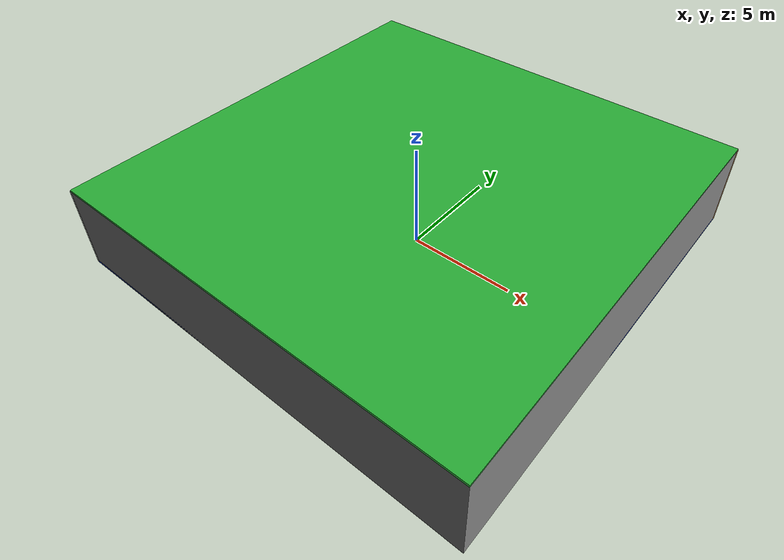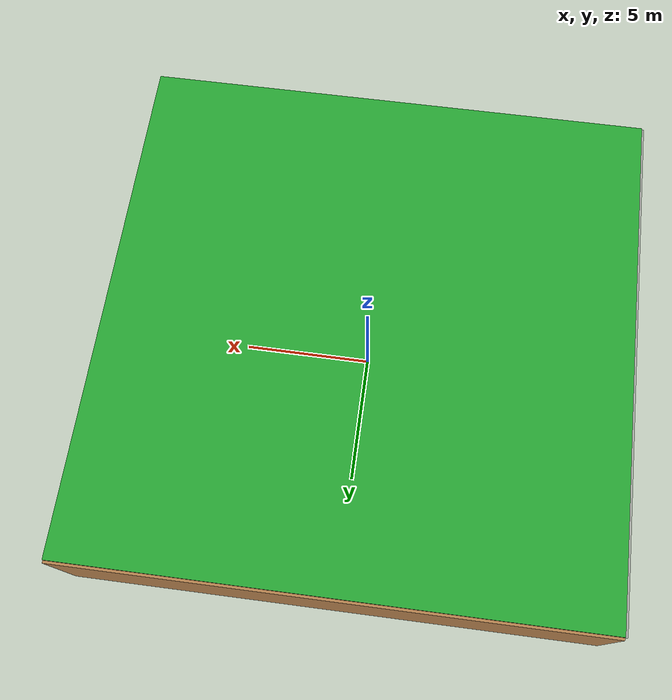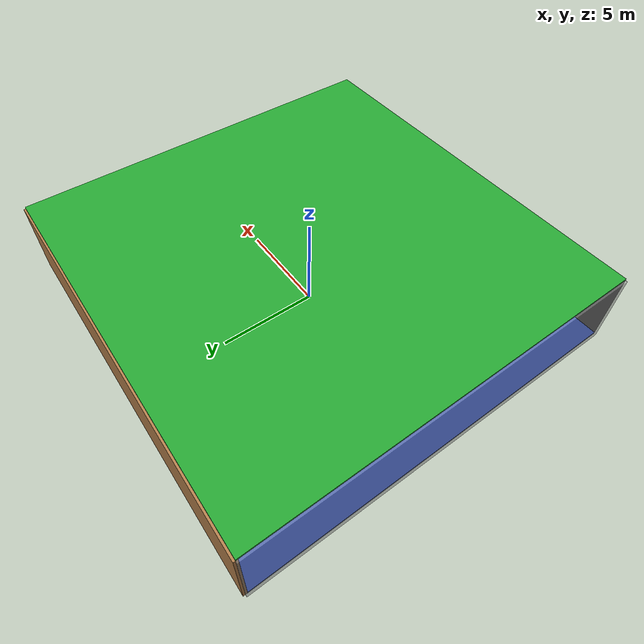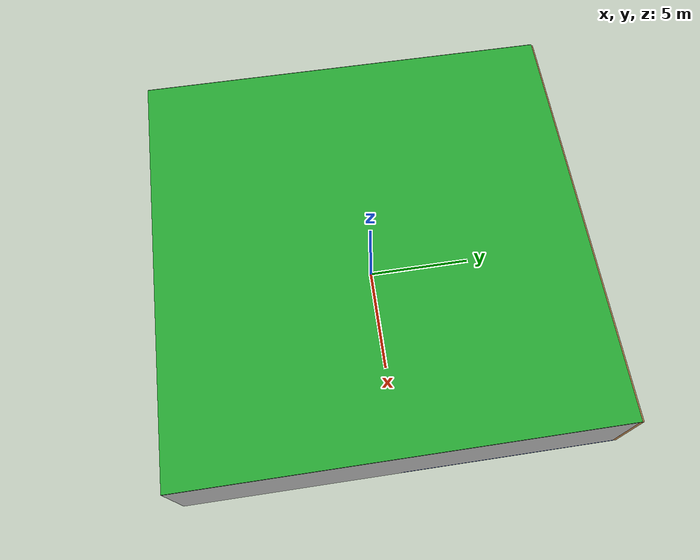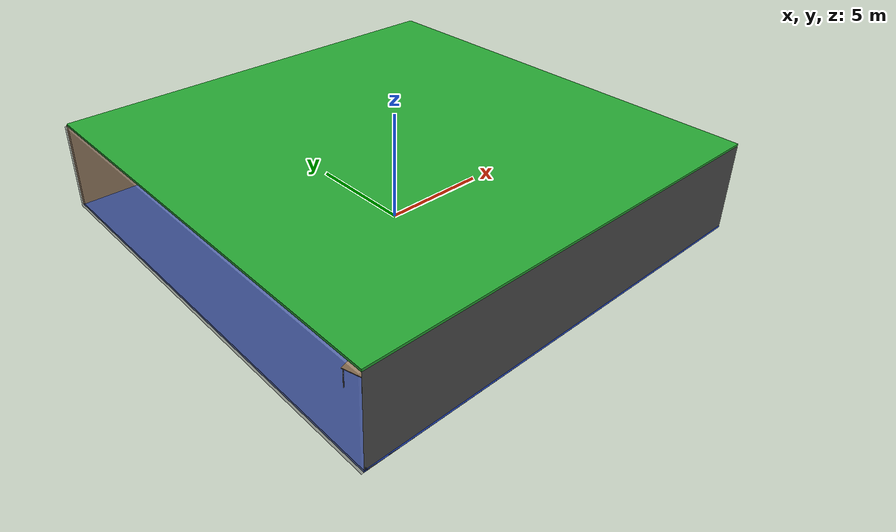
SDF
<sdf version="1.4">
 <world name="default">
  <physics type="ode">
   <max_step_size>0.001</max_step_size>
   <real_time_factor>1</real_time_factor>
   <real_time_update_rate>1000</real_time_update_rate>
   <gravity>0 0 -9.8</gravity>
  </physics>
  <scene><ambient>0.4 0.4 0.4 1</ambient><background>0.7 0.7 0.7 1</background><shadows>1</shadows></scene>
  <model name="Surrounding">
   <static>1</static>
   <link name="Ceiling">
    <collision name="Ceiling_Collision"><geometry><box><size>20 20 0.1</size></box></geometry></collision>
    <visual name="Ceiling_Visual">
     <geometry><box><size>20 20 0.1</size></box></geometry>
     <material>
      <script><uri>file://media/materials/scripts/gazebo.material</uri><name>Gazebo/Green</name></script>
     </material>
    </visual>
    <pose>0 0 4.05 0 0 0</pose>
   </link>
   <link name="Wall_South">
    <collision name="Wall_South_Collision">
     <geometry><box><size>20 0 4</size></box></geometry>
     <pose>0 0 2 0 -0 0</pose>
    </collision>
    <visual name="Wall_South_Visual">
     <pose>0 0 2 0 -0 0</pose>
     <geometry><box><size>20 0 4</size></box></geometry>
     <material>
      <script><uri>file://media/materials/scripts/gazebo.material</uri><name>Gazebo/DarkGrey</name></script>
     </material>
    </visual>
    <velocity_decay><linear>0</linear><angular>0</angular></velocity_decay>
    <pose>0 -10 0 0 -0 0</pose>
   </link>
   <link name="Wall_East">
    <collision name="Wall_21_Collision">
     <geometry><box><size>20 0 4</size></box></geometry>
     <pose>0 0 2 0 -0 0</pose>
    </collision>
    <visual name="Wall_21_Visual">
     <pose>0 0 2 0 -0 0</pose>
     <geometry><box><size>20 0 4</size></box></geometry>
     <material>
      <script><uri>file://media/materials/scripts/gazebo.material</uri><name>Gazebo/LightOn</name></script>
     </material>
    </visual>
    <velocity_decay><linear>0</linear><angular>0</angular></velocity_decay>
    <pose>10 0 0 0 -0 1.5708</pose>
   </link>
   <link name="Wall_North">
    <collision name="Wall_22_Collision">
     <geometry><box><size>20 0.2 4</size></box></geometry>
     <pose>0 0 2 0 -0 0</pose>
    </collision>
    <visual name="Wall_22_Visual">
     <pose>0 0 2 0 -0 0</pose>
     <geometry><box><size>20 0.2 4</size></box></geometry>
     <material>
      <script><uri>file://media/materials/scripts/gazebo.material</uri><name>Gazebo/WoodPallet</name></script>
     </material>
    </visual>
    <velocity_decay><linear>0</linear><angular>0</angular></velocity_decay>
    <pose>0 10 0 0 -0 0</pose>
   </link>
   <link name="Wall_West">
    <collision name="Wall_23_Collision">
     <geometry><box><size>20 0.2 4</size></box></geometry>
     <pose>0 0 2 0 -0 0</pose>
    </collision>
    <visual name="Wall_23_Visual">
     <pose>0 0 2 0 -0 0</pose>
     <geometry><box><size>20 0.2 4</size></box></geometry>
     <material>
      <script><uri>file://media/materials/scripts/gazebo.material</uri><name>Gazebo/GreyTransparent</name></script>
     </material>
    </visual>
    <velocity_decay><linear>0</linear><angular>0</angular></velocity_decay>
    <pose>-10 0 0 0 0 -1.5708</pose>
   </link>
   <link name="Ground_link">
    <collision name="collision">
     <pose>0 0 .05 0 -0 0</pose>
     <geometry><box><size>20 20 0.1</size></box></geometry>
    </collision>
    <visual name="visual">
     <pose>0 0 .05 0 -0 0</pose>
     <geometry><box><size>20 20 0.1</size></box></geometry>
     <material>
      <script><uri>file://media/materials/scripts/gazebo.material</uri><name>Gazebo/BlueLaser</name></script>
     </material>
    </visual>
   </link>
   <static>1</static>
  </model>
  <spherical_coordinates>
   <surface_model>EARTH_WGS84</surface_model>
   <latitude_deg>0</latitude_deg>
   <longitude_deg>0</longitude_deg>
   <elevation>0</elevation>
   <heading_deg>0</heading_deg>
  </spherical_coordinates>
  <light name="lightball_0" type="diffuse">
   <diffuse>0.8 0.8 0.8 1</diffuse>
   <specular>0.2 0.2 0.2 1</specular>
   <attenuation>
    <range>100</range>
    <constant>0.7</constant>
    <linear>0.01</linear>
    <quadratic>0.001</quadratic>
   </attenuation>
   <direction>-0.5 0.1 -0.9</direction>
   <pose>-0.970842423771 0.563446726791 0.785382545897 0 0 0</pose>
  </light>
  <light name="lightball_1" type="diffuse">
   <diffuse>0.8 0.8 0.8 1</diffuse>
   <specular>0.2 0.2 0.2 1</specular>
   <attenuation>
    <range>100</range>
    <constant>0.7</constant>
    <linear>0.01</linear>
    <quadratic>0.001</quadratic>
   </attenuation>
   <direction>-0.5 0.1 -0.9</direction>
   <pose>5.435956541 3.86478780326 0.607128049213 0 0 0</pose>
  </light>
  <light name="lightball_2" type="diffuse">
   <diffuse>0.8 0.8 0.8 1</diffuse>
   <specular>0.2 0.2 0.2 1</specular>
   <attenuation>
    <range>100</range>
    <constant>0.7</constant>
    <linear>0.01</linear>
    <quadratic>0.001</quadratic>
   </attenuation>
   <direction>-0.5 0.1 -0.9</direction>
   <pose>-0.109310338513 -7.3426509487 1.81414455217 0 0 0</pose>
  </light>
  <light name="lightball_3" type="diffuse">
   <diffuse>0.8 0.8 0.8 1</diffuse>
   <specular>0.2 0.2 0.2 1</specular>
   <attenuation>
    <range>100</range>
    <constant>0.7</constant>
    <linear>0.01</linear>
    <quadratic>0.001</quadratic>
   </attenuation>
   <direction>-0.5 0.1 -0.9</direction>
   <pose>1.43909907251 -9.99012707582 3.8110300695 0 0 0</pose>
  </light>
  <light name="lightball_4" type="diffuse">
   <diffuse>0.8 0.8 0.8 1</diffuse>
   <specular>0.2 0.2 0.2 1</specular>
   <attenuation>
    <range>100</range>
    <constant>0.7</constant>
    <linear>0.01</linear>
    <quadratic>0.001</quadratic>
   </attenuation>
   <direction>-0.5 0.1 -0.9</direction>
   <pose>-2.76571345269 -6.57618468165 1.09970583047 0 0 0</pose>
  </light>
  <light name="lightball_5" type="diffuse">
   <diffuse>0.8 0.8 0.8 1</diffuse>
   <specular>0.2 0.2 0.2 1</specular>
   <attenuation>
    <range>100</range>
    <constant>0.7</constant>
    <linear>0.01</linear>
    <quadratic>0.001</quadratic>
   </attenuation>
   <direction>-0.5 0.1 -0.9</direction>
   <pose>7.70422925581 -2.71696333194 3.43405022735 0 0 0</pose>
  </light>
  <light name="lightball_6" type="diffuse">
   <diffuse>0.8 0.8 0.8 1</diffuse>
   <specular>0.2 0.2 0.2 1</specular>
   <attenuation>
    <range>100</range>
    <constant>0.7</constant>
    <linear>0.01</linear>
    <quadratic>0.001</quadratic>
   </attenuation>
   <direction>-0.5 0.1 -0.9</direction>
   <pose>0.0447054448487 -9.67557682145 2.37523709749 0 0 0</pose>
  </light>
  <light name="lightball_7" type="diffuse">
   <diffuse>0.8 0.8 0.8 1</diffuse>
   <specular>0.2 0.2 0.2 1</specular>
   <attenuation>
    <range>100</range>
    <constant>0.7</constant>
    <linear>0.01</linear>
    <quadratic>0.001</quadratic>
   </attenuation>
   <direction>-0.5 0.1 -0.9</direction>
   <pose>-1.07659334779 3.02989889886 1.49980935347 0 0 0</pose>
  </light>
  <light name="lightball_8" type="diffuse">
   <diffuse>0.8 0.8 0.8 1</diffuse>
   <specular>0.2 0.2 0.2 1</specular>
   <attenuation>
    <range>100</range>
    <constant>0.7</constant>
    <linear>0.01</linear>
    <quadratic>0.001</quadratic>
   </attenuation>
   <direction>-0.5 0.1 -0.9</direction>
   <pose>9.81013333619 1.33111931713 3.48960504428 0 0 0</pose>
  </light>
  <light name="lightball_9" type="diffuse">
   <diffuse>0.8 0.8 0.8 1</diffuse>
   <specular>0.2 0.2 0.2 1</specular>
   <attenuation>
    <range>100</range>
    <constant>0.7</constant>
    <linear>0.01</linear>
    <quadratic>0.001</quadratic>
   </attenuation>
   <direction>-0.5 0.1 -0.9</direction>
   <pose>5.78378029354 9.77578157268 3.70107503262 0 0 0</pose>
  </light>
  <include><uri>model://table</uri><pose>-7.5754638057 -7.08819133229 0 0 0 0.283637890882</pose></include>
  <include>
   <uri>model://construction_cone</uri>
   <pose>-4.39908200047 -4.86253014421 0 0 0 0.434544890554</pose>
  </include>
  <include><uri>model://table</uri><pose>-1.54326912197 -6.63849748098 0 0 0 2.06108732375</pose></include>
  <include>
   <uri>model://robocup_3Dsim_goal</uri>
   <pose>-1.68286798772 -5.58962631433 0 0 0 0.103322550644</pose>
  </include>
  <include><uri>model://table</uri><pose>4.68932786903 -0.926669163404 0 0 0 1.50125133417</pose></include>
  <include><uri>model://cabinet</uri><pose>3.93071660476 1.42495351549 0 0 0 1.42445972536</pose></include>
  <include><uri>model://cabinet</uri><pose>6.44996106176 -1.87351900464 0 0 0 2.1140689868</pose></include>
 </world>
</sdf>

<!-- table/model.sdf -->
<sdf version="1.5">
  <model name="table">
    <static>true</static>
    <link name="link">
      <collision name="surface">
        <pose>0 0 1.0 0 0 0</pose>
        <geometry>
          <box>
            <size>1.5 0.8 0.03</size>
          </box>
        </geometry>
        <surface>
          <friction>
            <ode>
              <mu>0.6</mu>
              <mu2>0.6</mu2>
            </ode>
          </friction>
        </surface>
      </collision>
      <visual name="visual1">
        <pose>0 0 1.0 0 0 0</pose>
        <geometry>
          <box>
            <size>1.5 0.8 0.03</size>
          </box>
        </geometry>
        <material>
          <script>
            <uri>model://media/materials/scripts/gazebo.material</uri>
            <name>Gazebo/Wood</name>
          </script>
        </material>
      </visual>
      <collision name="front_left_leg">
        <pose>0.68 0.38 0.5 0 0 0</pose>
        <geometry>
          <cylinder>
            <radius>0.02</radius>
            <length>1.0</length>
          </cylinder>
        </geometry>
      </collision>
      <visual name="front_left_leg">
        <pose>0.68 0.38 0.5 0 0 0</pose>
        <geometry>
          <cylinder>
            <radius>0.02</radius>
            <length>1.0</length>
          </cylinder>
        </geometry>
        <material>
          <script>
            <uri>model://media/materials/scripts/gazebo.material</uri>
            <name>Gazebo/Grey</name>
          </script>
        </material>
      </visual>
      <collision name="front_right_leg">
        <pose>0.68 -0.38 0.5 0 0 0</pose>
        <geometry>
          <cylinder>
            <radius>0.02</radius>
            <length>1.0</length>
          </cylinder>
        </geometry>
      </collision>
      <visual name="front_right_leg">
        <pose>0.68 -0.38 0.5 0 0 0</pose>
        <geometry>
          <cylinder>
            <radius>0.02</radius>
            <length>1.0</length>
          </cylinder>
        </geometry>
        <material>
          <script>
            <uri>model://media/materials/scripts/gazebo.material</uri>
            <name>Gazebo/Grey</name>
          </script>
        </material>
      </visual>
      <collision name="back_right_leg">
        <pose>-0.68 -0.38 0.5 0 0 0</pose>
        <geometry>
          <cylinder>
            <radius>0.02</radius>
            <length>1.0</length>
          </cylinder>
        </geometry>
      </collision>
      <visual name="back_right_leg">
        <pose>-0.68 -0.38 0.5 0 0 0</pose>
        <geometry>
          <cylinder>
            <radius>0.02</radius>
            <length>1.0</length>
          </cylinder>
        </geometry>
        <material>
          <script>
            <uri>model://media/materials/scripts/gazebo.material</uri>
            <name>Gazebo/Grey</name>
          </script>
        </material>
      </visual>
      <collision name="back_left_leg">
        <pose>-0.68 0.38 0.5 0 0 0</pose>
        <geometry>
          <cylinder>
            <radius>0.02</radius>
            <length>1.0</length>
          </cylinder>
        </geometry>
      </collision>
      <visual name="back_left_leg">
        <pose>-0.68 0.38 0.5 0 0 0</pose>
        <geometry>
          <cylinder>
            <radius>0.02</radius>
            <length>1.0</length>
          </cylinder>
        </geometry>
        <material>
          <script>
            <uri>model://media/materials/scripts/gazebo.material</uri>
            <name>Gazebo/Grey</name>
          </script>
        </material>
      </visual>
    </link>
  </model>
</sdf>

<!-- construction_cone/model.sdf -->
<sdf version="1.5">
  <model name="Construction Cone">
    <link name="link">
      <collision name="collision">
        <geometry>
          <mesh>
            <scale>10 10 10</scale>
            <uri>file://isr-testbed/construction_cone/meshes/construction_cone.dae</uri>
          </mesh>
        </geometry>
      </collision>
      <visual name="visual">
        <geometry>
          <mesh>
            <scale>10 10 10</scale>
            <uri>file://isr-testbed/construction_cone/meshes/construction_cone.dae</uri>
          </mesh>
        </geometry>
      </visual>
    </link>
  </model>
</sdf>

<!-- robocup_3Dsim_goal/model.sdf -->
<sdf version="1.5">
  <model name="robocup_3d_goal">
    <static>true</static>
    <link name="left_post">
      <pose>0 1.05 0.45 0 0 0</pose>
      <collision name="collision">
        <geometry>
          <cylinder>
            <radius>0.05</radius>
            <length>0.9</length>
          </cylinder>
        </geometry>
      </collision>
      <visual name="visual">
        <geometry>
          <cylinder>
            <radius>0.05</radius>
            <length>0.9</length>
          </cylinder>
        </geometry>
        <material>
          <script>
            <uri>file://media/materials/scripts/gazebo.material</uri>
            <name>Gazebo/ZincYellow</name>
          </script>
        </material>
      </visual>
    </link>
    <link name="left_support_horiz_lower">
      <pose>0.30 1.05 0.01 0 0 0</pose>
      <collision name="collision">
        <geometry>
          <box>
            <size>0.50 0.02 0.02</size>
          </box>
        </geometry>
      </collision>
      <visual name="visual">
        <geometry>
          <box>
            <size>0.50 0.02 0.02</size>
          </box>
        </geometry>
        <material>
          <script>
            <uri>file://media/materials/scripts/gazebo.material</uri>
            <name>Gazebo/White</name>
          </script>
        </material>
      </visual>
    </link>
    <link name="left_support_horiz_upper">
      <pose>0.30 1.05 0.79 0 0 0</pose>
      <collision name="collision">
        <geometry>
          <box>
            <size>0.50 0.02 0.02</size>
          </box>
        </geometry>
      </collision>
      <visual name="visual">
        <geometry>
          <box>
            <size>0.50 0.02 0.02</size>
          </box>
        </geometry>
        <material>
          <script>
            <uri>file://media/materials/scripts/gazebo.material</uri>
            <name>Gazebo/White</name>
          </script>
        </material>
      </visual>
    </link>
    <link name="left_support_vertical">
      <pose>0.56 1.05 0.4 0 1.5708 0</pose>
      <collision name="collision">
        <geometry>
          <box>
            <size>0.80 0.02 0.02</size>
          </box>
        </geometry>
      </collision>
      <visual name="visual">
        <geometry>
          <box>
            <size>0.80 0.02 0.02</size>
          </box>
        </geometry>
        <material>
          <script>
            <uri>file://media/materials/scripts/gazebo.material</uri>
            <name>Gazebo/White</name>
          </script>
        </material>
      </visual>
    </link>
    <link name="right_support_horiz_lower">
      <pose>0.30 -1.05 0.01 0 0 0</pose>
      <collision name="collision">
        <geometry>
          <box>
            <size>0.50 0.02 0.02</size>
          </box>
        </geometry>
      </collision>
      <visual name="visual">
        <geometry>
          <box>
            <size>0.50 0.02 0.02</size>
          </box>
        </geometry>
        <material>
          <script>
            <uri>file://media/materials/scripts/gazebo.material</uri>
            <name>Gazebo/White</name>
          </script>
        </material>
      </visual>
    </link>
    <link name="right_support_horiz_upper">
      <pose>0.30 -1.05 0.79 0 0 0</pose>
      <collision name="collision">
        <geometry>
          <box>
            <size>0.50 0.02 0.02</size>
          </box>
        </geometry>
      </collision>
      <visual name="visual">
        <geometry>
          <box>
            <size>0.50 0.02 0.02</size>
          </box>
        </geometry>
        <material>
          <script>
            <uri>file://media/materials/scripts/gazebo.material</uri>
            <name>Gazebo/White</name>
          </script>
        </material>
      </visual>
    </link>
    <link name="right_support_vertical">
      <pose>0.56 -1.05 0.4 0 1.5708 0</pose>
      <collision name="collision">
        <geometry>
          <box>
            <size>0.80 0.02 0.02</size>
          </box>
        </geometry>
      </collision>
      <visual name="visual">
        <geometry>
          <box>
            <size>0.80 0.02 0.02</size>
          </box>
        </geometry>
        <material>
          <script>
            <uri>file://media/materials/scripts/gazebo.material</uri>
            <name>Gazebo/White</name>
          </script>
        </material>
      </visual>
    </link>
    <link name="center_support_horiz_lower">
      <pose>0.56 0 0.01 0 1.5708 0</pose>
      <collision name="collision">
        <geometry>
          <box>
            <size>0.02 2.08 0.02</size>
          </box>
        </geometry>
      </collision>
      <visual name="visual">
        <geometry>
          <box>
            <size>0.02 2.08 0.02</size>
          </box>
        </geometry>
        <material>
          <script>
            <uri>file://media/materials/scripts/gazebo.material</uri>
            <name>Gazebo/White</name>
          </script>
        </material>
      </visual>
    </link>
    <link name="center_support_horiz_upper">
      <pose>0.56 0 0.79 0 1.5708 0</pose>
      <collision name="collision">
        <geometry>
          <box>
            <size>0.02 2.08 0.02</size>
          </box>
        </geometry>
      </collision>
      <visual name="visual">
        <geometry>
          <box>
            <size>0.02 2.08 0.02</size>
          </box>
        </geometry>
        <material>
          <script>
            <uri>file://media/materials/scripts/gazebo.material</uri>
            <name>Gazebo/White</name>
          </script>
        </material>
      </visual>
    </link>
    <link name="right_post">
      <pose>0 -1.05 0.45 0 0 0</pose>
      <collision name="collision">
        <geometry>
          <cylinder>
            <radius>0.05</radius>
            <length>0.9</length>
          </cylinder>
        </geometry>
      </collision>
      <visual name="visual">
        <geometry>
          <cylinder>
            <radius>0.05</radius>
            <length>0.9</length>
          </cylinder>
        </geometry>
        <material>
          <script>
            <uri>file://media/materials/scripts/gazebo.material</uri>
            <name>Gazebo/ZincYellow</name>
          </script>
        </material>
      </visual>
    </link>
    <link name="crossbar">
      <pose>0 0 0.85 1.57 1.57 0</pose>
      <collision name="collision">
        <geometry>
          <cylinder>
            <radius>0.05</radius>
            <length>2.0</length>
          </cylinder>
        </geometry>
      </collision>
      <visual name="visual">
        <geometry>
          <cylinder>
            <radius>0.05</radius>
            <length>2.0</length>
          </cylinder>
        </geometry>
        <material>
          <script>
            <uri>file://media/materials/scripts/gazebo.material</uri>
            <name>Gazebo/ZincYellow</name>
          </script>
        </material>
      </visual>
    </link>
    <link name="center_net">
      <pose>0.56 0 0.40 0 0 0</pose>
      <collision name="collision">
        <geometry>
          <box>
            <size>0.01 2.1 0.80</size>
          </box>
        </geometry>
      </collision>
      <visual name="visual">
        <geometry>
          <box>
            <size>0.01 2.1 0.80</size>
          </box>
        </geometry>
        <material>
          <script>
            <uri>model://../model_source/models/robocup09_spl_field/materials/scripts/</uri>
            <uri>model://../model_source/models/robocup09_spl_field/materials/textures/</uri>
            <name>RoboCup/Net</name>
          </script>
        </material>
      </visual>
    </link>
    <link name="left_net">
      <pose>0.30 1.05 0.40 0 0 0</pose>
      <collision name="collision">
        <geometry>
          <box>
            <size>0.50 0.01 0.76</size>
          </box>
        </geometry>
      </collision>
      <visual name="visual">
        <geometry>
          <box>
            <size>0.50 0.01 0.76</size>
          </box>
        </geometry>
        <material>
          <script>
            <uri>model://../model_source/models/robocup09_spl_field/materials/scripts/</uri>
            <uri>model://../model_source/models/robocup09_spl_field/materials/textures/</uri>
            <name>RoboCup/Net</name>
          </script>
        </material>
      </visual>
    </link>
    <link name="right_net">
      <pose>0.30 -1.05 0.40 0 0 0</pose>
      <collision name="collision">
        <geometry>
          <box>
            <size>0.50 0.01 0.76</size>
          </box>
        </geometry>
      </collision>
      <visual name="visual">
        <geometry>
          <box>
            <size>0.50 0.01 0.76</size>
          </box>
        </geometry>
        <material>
          <script>
            <uri>model://../model_source/models/robocup09_spl_field/materials/scripts/</uri>
            <uri>model://../model_source/models/robocup09_spl_field/materials/textures/</uri>
            <name>RoboCup/Net</name>
          </script>
        </material>
      </visual>
    </link>
  </model>
</sdf>

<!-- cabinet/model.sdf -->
<sdf version="1.5">
  <model name="cabinet">
    <static>true</static>
    <link name="cabinet_bottom_plate">
      <inertial>
        <pose>0 0 -1 0 0 0</pose>
        <inertia>
          <ixx>2.050000</ixx>
          <ixy>0</ixy>
          <ixz>0</ixz>
          <iyy>2.050000</iyy>
          <iyz>0</iyz>
          <izz>2.050000</izz>
        </inertia>
        <mass>25.000000</mass>
      </inertial>
      <collision name="cabinet_bottom_plate_geom">
        <pose>0 0 0.010000 0 0 0</pose>
        <geometry>
          <box>
            <size>0.450000 0.450000 0.020000</size>
          </box>
        </geometry>
      </collision>
      <visual name="cabinet_bottom_plate_geom_visual">
        <pose>0 0 0.010000 0 0 0</pose>
        <geometry>
          <box>
            <size>0.450000 0.450000 0.020000</size>
          </box>
        </geometry>
        <material>
          <script>
            <uri>model://media/materials/scripts/gazebo.material</uri>
            <name>Gazebo/Wood</name>
          </script>
        </material>
      </visual>
      <collision name="cabinet_bottom_plate_geom_cabinet_back_plate">
        <pose>0.235000 0 0.510000 0 0 0</pose>
        <geometry>
          <box>
            <size>0.020000 0.450000 1.020000</size>
          </box>
        </geometry>
      </collision>
      <visual name="cabinet_bottom_plate_geom_cabinet_back_plate_visual">
        <pose>0.235000 0 0.510000 0 0 0</pose>
        <geometry>
          <box>
            <size>0.020000 0.450000 1.020000</size>
          </box>
        </geometry>
        <material>
          <script>
            <uri>model://media/materials/scripts/gazebo.material</uri>
            <name>Gazebo/Wood</name>
          </script>
        </material>
      </visual>
      <collision name="cabinet_bottom_plate_geom_cabinet_left_plate">
        <pose>0 0.235000 0.510000 0 0 0</pose>
        <geometry>
          <box>
            <size>0.450000 0.020000 1.020000</size>
          </box>
        </geometry>
      </collision>
      <visual name="cabinet_bottom_plate_geom_cabinet_left_plate_visual">
        <pose>0 0.235000 0.510000 0 0 0</pose>
        <geometry>
          <box>
            <size>0.450000 0.020000 1.020000</size>
          </box>
        </geometry>
        <material>
          <script>
            <uri>model://media/materials/scripts/gazebo.material</uri>
            <name>Gazebo/Wood</name>
          </script>
        </material>
      </visual>
      <collision name="cabinet_bottom_plate_geom_cabinet_middle_plate">
        <pose>0 0 0.510000 0 0 0</pose>
        <geometry>
          <box>
            <size>0.450000 0.450000 0.020000</size>
          </box>
        </geometry>
      </collision>
      <visual name="cabinet_bottom_plate_geom_cabinet_middle_plate_visual">
        <pose>0 0 0.510000 0 0 0</pose>
        <geometry>
          <box>
            <size>0.450000 0.450000 0.020000</size>
          </box>
        </geometry>
        <material>
          <script>
            <uri>model://media/materials/scripts/gazebo.material</uri>
            <name>Gazebo/Wood</name>
          </script>
        </material>
      </visual>
      <collision name="cabinet_bottom_plate_geom_cabinet_right_plate">
        <pose>0 -0.235000 0.510000 0 0 0</pose>
        <geometry>
          <box>
            <size>0.450000 0.020000 1.020000</size>
          </box>
        </geometry>
      </collision>
      <visual name="cabinet_bottom_plate_geom_cabinet_right_plate_visual">
        <pose>0 -0.235000 0.510000 0 0 0</pose>
        <geometry>
          <box>
            <size>0.450000 0.020000 1.020000</size>
          </box>
        </geometry>
        <material>
          <script>
            <uri>model://media/materials/scripts/gazebo.material</uri>
            <name>Gazebo/Wood</name>
          </script>
        </material>
      </visual>
      <collision name="cabinet_bottom_plate_geom_cabinet_top_plate">
        <pose>0 0 1.010000 0 0 0</pose>
        <geometry>
          <box>
            <size>0.450000 0.450000 0.020000</size>
          </box>
        </geometry>
      </collision>
      <visual name="cabinet_bottom_plate_geom_cabinet_top_plate_visual">
        <pose>0 0 1.010000 0 0 0</pose>
        <geometry>
          <box>
            <size>0.450000 0.450000 0.020000</size>
          </box>
        </geometry>
        <material>
          <script>
            <uri>model://media/materials/scripts/gazebo.material</uri>
            <name>Gazebo/Wood</name>
          </script>
        </material>
      </visual>
    </link>
  </model>
</sdf>
